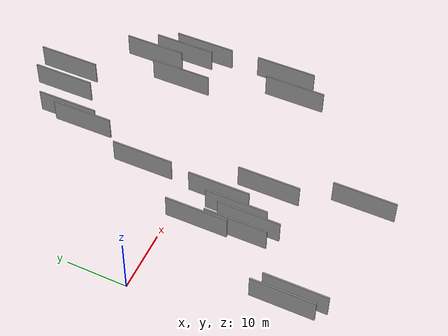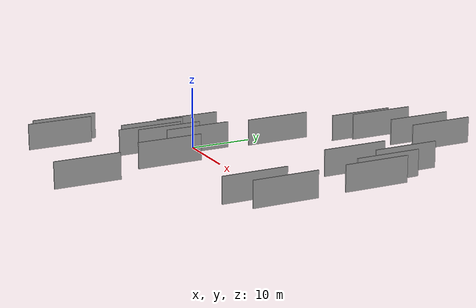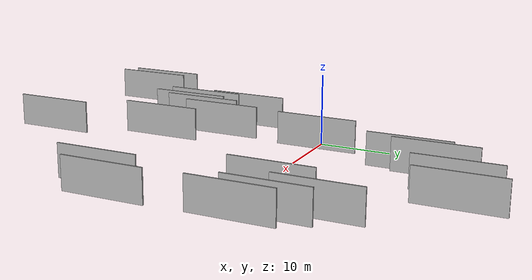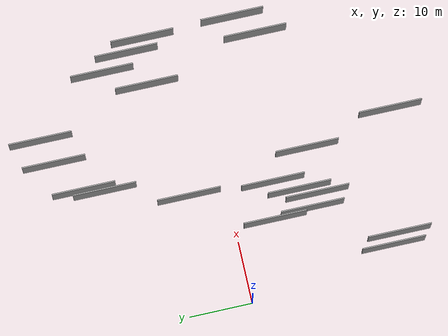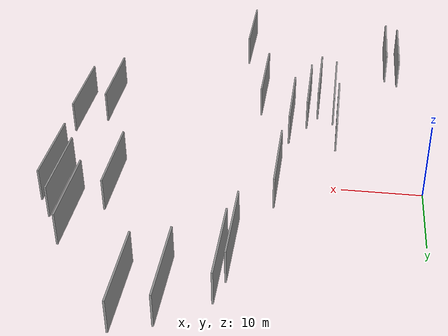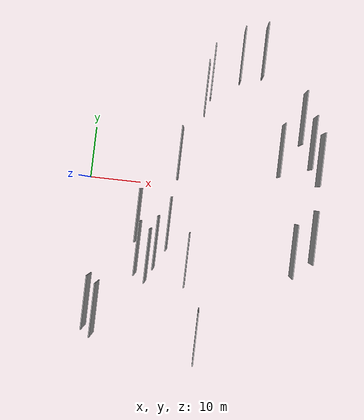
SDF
<sdf version="1.6">
 <world name="default">
  <scene>
   <sky><clouds><speed>12</speed></clouds></sky>
   <ambient>0.4 0.4 0.4 1</ambient>
   <background>0.7 0.7 0.7 1</background>
   <shadows>1</shadows>
  </scene>
  <gravity>0 0 -9.8066</gravity>
  <magnetic_field>6e-06 2.3e-05 -4.2e-05</magnetic_field>
  <physics default="0" name="default_physics" type="ode">
   <ode>
    <solver>
     <type>quick</type>
     <iters>10</iters>
     <sor>1.0</sor>
     <use_dynamic_moi_rescaling>0</use_dynamic_moi_rescaling>
    </solver>
    <constraints>
     <cfm>0</cfm>
     <erp>0.2</erp>
     <contact_max_correcting_vel>100</contact_max_correcting_vel>
     <contact_surface_layer>0.001</contact_surface_layer>
    </constraints>
   </ode>
   <max_step_size>0.004</max_step_size>
   <real_time_factor>1</real_time_factor>
   <real_time_update_rate>250</real_time_update_rate>
  </physics>
  <light name="sun" type="directional">
   <pose>0 0 10 0 0 0</pose>
   <diffuse>0.8 0.8 0.8 1</diffuse>
   <specular>0.2 0.2 0.2 1</specular>
   <attenuation>
    <range>1000</range>
    <constant>0.9</constant>
    <linear>0.01</linear>
    <quadratic>0.001</quadratic>
   </attenuation>
   <direction>-0.5 0.1 -0.9</direction>
  </light>
  <model name="grey_wall_1">
   <static>1</static>
   <pose>11.6935 -12.1341 5.0 0.000000 0.000000 1.570796</pose>
   <link name="link">
    <pose>0 0 2.00 0 0 0</pose>
    <collision name="collision"><geometry><box><size>10.00 0.2 4.00</size></box></geometry></collision>
    <visual name="visual">
     <cast_shadows>0</cast_shadows>
     <geometry><box><size>10.00 0.2 4.00</size></box></geometry>
     <material>
      <script>
       <uri>model://grey_wall/materials/scripts</uri>
       <uri>model://grey_wall/materials/textures</uri>
       <name>vrc/grey_wall</name>
      </script>
     </material>
    </visual>
   </link>
  </model>
  <model name="grey_wall_2">
   <static>1</static>
   <pose>17.6268 6.1810 5.0 0.000000 0.000000 1.570796</pose>
   <link name="link">
    <pose>0 0 2.00 0 0 0</pose>
    <collision name="collision"><geometry><box><size>10.00 0.2 4.00</size></box></geometry></collision>
    <visual name="visual">
     <cast_shadows>0</cast_shadows>
     <geometry><box><size>10.00 0.2 4.00</size></box></geometry>
     <material>
      <script>
       <uri>model://grey_wall/materials/scripts</uri>
       <uri>model://grey_wall/materials/textures</uri>
       <name>vrc/grey_wall</name>
      </script>
     </material>
    </visual>
   </link>
  </model>
  <model name="grey_wall_3">
   <static>1</static>
   <pose>31.2369 26.8618 5.0 0.000000 0.000000 1.570796</pose>
   <link name="link">
    <pose>0 0 2.00 0 0 0</pose>
    <collision name="collision"><geometry><box><size>10.00 0.2 4.00</size></box></geometry></collision>
    <visual name="visual">
     <cast_shadows>0</cast_shadows>
     <geometry><box><size>10.00 0.2 4.00</size></box></geometry>
     <material>
      <script>
       <uri>model://grey_wall/materials/scripts</uri>
       <uri>model://grey_wall/materials/textures</uri>
       <name>vrc/grey_wall</name>
      </script>
     </material>
    </visual>
   </link>
  </model>
  <model name="grey_wall_4">
   <static>1</static>
   <pose>21.2195 18.7803 5.0 0.000000 0.000000 1.570796</pose>
   <link name="link">
    <pose>0 0 2.00 0 0 0</pose>
    <collision name="collision"><geometry><box><size>10.00 0.2 4.00</size></box></geometry></collision>
    <visual name="visual">
     <cast_shadows>0</cast_shadows>
     <geometry><box><size>10.00 0.2 4.00</size></box></geometry>
     <material>
      <script>
       <uri>model://grey_wall/materials/scripts</uri>
       <uri>model://grey_wall/materials/textures</uri>
       <name>vrc/grey_wall</name>
      </script>
     </material>
    </visual>
   </link>
  </model>
  <model name="grey_wall_5">
   <static>1</static>
   <pose>11.1472 -6.0909 5.0 0.000000 0.000000 1.570796</pose>
   <link name="link">
    <pose>0 0 2.00 0 0 0</pose>
    <collision name="collision"><geometry><box><size>10.00 0.2 4.00</size></box></geometry></collision>
    <visual name="visual">
     <cast_shadows>0</cast_shadows>
     <geometry><box><size>10.00 0.2 4.00</size></box></geometry>
     <material>
      <script>
       <uri>model://grey_wall/materials/scripts</uri>
       <uri>model://grey_wall/materials/textures</uri>
       <name>vrc/grey_wall</name>
      </script>
     </material>
    </visual>
   </link>
  </model>
  <model name="grey_wall_6">
   <static>1</static>
   <pose>27.1706 25.5830 5.0 0.000000 0.000000 1.570796</pose>
   <link name="link">
    <pose>0 0 2.00 0 0 0</pose>
    <collision name="collision"><geometry><box><size>10.00 0.2 4.00</size></box></geometry></collision>
    <visual name="visual">
     <cast_shadows>0</cast_shadows>
     <geometry><box><size>10.00 0.2 4.00</size></box></geometry>
     <material>
      <script>
       <uri>model://grey_wall/materials/scripts</uri>
       <uri>model://grey_wall/materials/textures</uri>
       <name>vrc/grey_wall</name>
      </script>
     </material>
    </visual>
   </link>
  </model>
  <model name="grey_wall_7">
   <static>1</static>
   <pose>4.9014 -24.3861 5.0 0.000000 0.000000 1.570796</pose>
   <link name="link">
    <pose>0 0 2.00 0 0 0</pose>
    <collision name="collision"><geometry><box><size>10.00 0.2 4.00</size></box></geometry></collision>
    <visual name="visual">
     <cast_shadows>0</cast_shadows>
     <geometry><box><size>10.00 0.2 4.00</size></box></geometry>
     <material>
      <script>
       <uri>model://grey_wall/materials/scripts</uri>
       <uri>model://grey_wall/materials/textures</uri>
       <name>vrc/grey_wall</name>
      </script>
     </material>
    </visual>
   </link>
  </model>
  <model name="grey_wall_8">
   <static>1</static>
   <pose>42.0584 10.8622 5.0 0.000000 0.000000 1.570796</pose>
   <link name="link">
    <pose>0 0 2.00 0 0 0</pose>
    <collision name="collision"><geometry><box><size>10.00 0.2 4.00</size></box></geometry></collision>
    <visual name="visual">
     <cast_shadows>0</cast_shadows>
     <geometry><box><size>10.00 0.2 4.00</size></box></geometry>
     <material>
      <script>
       <uri>model://grey_wall/materials/scripts</uri>
       <uri>model://grey_wall/materials/textures</uri>
       <name>vrc/grey_wall</name>
      </script>
     </material>
    </visual>
   </link>
  </model>
  <model name="grey_wall_9">
   <static>1</static>
   <pose>39.7345 15.2526 5.0 0.000000 0.000000 1.570796</pose>
   <link name="link">
    <pose>0 0 2.00 0 0 0</pose>
    <collision name="collision"><geometry><box><size>10.00 0.2 4.00</size></box></geometry></collision>
    <visual name="visual">
     <cast_shadows>0</cast_shadows>
     <geometry><box><size>10.00 0.2 4.00</size></box></geometry>
     <material>
      <script>
       <uri>model://grey_wall/materials/scripts</uri>
       <uri>model://grey_wall/materials/textures</uri>
       <name>vrc/grey_wall</name>
      </script>
     </material>
    </visual>
   </link>
  </model>
  <model name="grey_wall_10">
   <static>1</static>
   <pose>44.1961 -6.5715 5.0 0.000000 0.000000 1.570796</pose>
   <link name="link">
    <pose>0 0 2.00 0 0 0</pose>
    <collision name="collision"><geometry><box><size>10.00 0.2 4.00</size></box></geometry></collision>
    <visual name="visual">
     <cast_shadows>0</cast_shadows>
     <geometry><box><size>10.00 0.2 4.00</size></box></geometry>
     <material>
      <script>
       <uri>model://grey_wall/materials/scripts</uri>
       <uri>model://grey_wall/materials/textures</uri>
       <name>vrc/grey_wall</name>
      </script>
     </material>
    </visual>
   </link>
  </model>
  <model name="grey_wall_11">
   <static>1</static>
   <pose>21.1061 -13.3948 5.0 0.000000 0.000000 1.570796</pose>
   <link name="link">
    <pose>0 0 2.00 0 0 0</pose>
    <collision name="collision"><geometry><box><size>10.00 0.2 4.00</size></box></geometry></collision>
    <visual name="visual">
     <cast_shadows>0</cast_shadows>
     <geometry><box><size>10.00 0.2 4.00</size></box></geometry>
     <material>
      <script>
       <uri>model://grey_wall/materials/scripts</uri>
       <uri>model://grey_wall/materials/textures</uri>
       <name>vrc/grey_wall</name>
      </script>
     </material>
    </visual>
   </link>
  </model>
  <model name="grey_wall_12">
   <static>1</static>
   <pose>24.3919 -27.4640 5.0 0.000000 0.000000 1.570796</pose>
   <link name="link">
    <pose>0 0 2.00 0 0 0</pose>
    <collision name="collision"><geometry><box><size>10.00 0.2 4.00</size></box></geometry></collision>
    <visual name="visual">
     <cast_shadows>0</cast_shadows>
     <geometry><box><size>10.00 0.2 4.00</size></box></geometry>
     <material>
      <script>
       <uri>model://grey_wall/materials/scripts</uri>
       <uri>model://grey_wall/materials/textures</uri>
       <name>vrc/grey_wall</name>
      </script>
     </material>
    </visual>
   </link>
  </model>
  <model name="grey_wall_13">
   <static>1</static>
   <pose>40.7871 -9.5251 5.0 0.000000 0.000000 1.570796</pose>
   <link name="link">
    <pose>0 0 2.00 0 0 0</pose>
    <collision name="collision"><geometry><box><size>10.00 0.2 4.00</size></box></geometry></collision>
    <visual name="visual">
     <cast_shadows>0</cast_shadows>
     <geometry><box><size>10.00 0.2 4.00</size></box></geometry>
     <material>
      <script>
       <uri>model://grey_wall/materials/scripts</uri>
       <uri>model://grey_wall/materials/textures</uri>
       <name>vrc/grey_wall</name>
      </script>
     </material>
    </visual>
   </link>
  </model>
  <model name="grey_wall_14">
   <static>1</static>
   <pose>43.8531 7.9176 5.0 0.000000 0.000000 1.570796</pose>
   <link name="link">
    <pose>0 0 2.00 0 0 0</pose>
    <collision name="collision"><geometry><box><size>10.00 0.2 4.00</size></box></geometry></collision>
    <visual name="visual">
     <cast_shadows>0</cast_shadows>
     <geometry><box><size>10.00 0.2 4.00</size></box></geometry>
     <material>
      <script>
       <uri>model://grey_wall/materials/scripts</uri>
       <uri>model://grey_wall/materials/textures</uri>
       <name>vrc/grey_wall</name>
      </script>
     </material>
    </visual>
   </link>
  </model>
  <model name="grey_wall_15">
   <static>1</static>
   <pose>15.0010 -10.7951 5.0 0.000000 0.000000 1.570796</pose>
   <link name="link">
    <pose>0 0 2.00 0 0 0</pose>
    <collision name="collision"><geometry><box><size>10.00 0.2 4.00</size></box></geometry></collision>
    <visual name="visual">
     <cast_shadows>0</cast_shadows>
     <geometry><box><size>10.00 0.2 4.00</size></box></geometry>
     <material>
      <script>
       <uri>model://grey_wall/materials/scripts</uri>
       <uri>model://grey_wall/materials/textures</uri>
       <name>vrc/grey_wall</name>
      </script>
     </material>
    </visual>
   </link>
  </model>
  <model name="grey_wall_16">
   <static>1</static>
   <pose>22.0419 21.9297 5.0 0.000000 0.000000 1.570796</pose>
   <link name="link">
    <pose>0 0 2.00 0 0 0</pose>
    <collision name="collision"><geometry><box><size>10.00 0.2 4.00</size></box></geometry></collision>
    <visual name="visual">
     <cast_shadows>0</cast_shadows>
     <geometry><box><size>10.00 0.2 4.00</size></box></geometry>
     <material>
      <script>
       <uri>model://grey_wall/materials/scripts</uri>
       <uri>model://grey_wall/materials/textures</uri>
       <name>vrc/grey_wall</name>
      </script>
     </material>
    </visual>
   </link>
  </model>
  <model name="grey_wall_17">
   <static>1</static>
   <pose>16.9895 -7.0257 5.0 0.000000 0.000000 1.570796</pose>
   <link name="link">
    <pose>0 0 2.00 0 0 0</pose>
    <collision name="collision"><geometry><box><size>10.00 0.2 4.00</size></box></geometry></collision>
    <visual name="visual">
     <cast_shadows>0</cast_shadows>
     <geometry><box><size>10.00 0.2 4.00</size></box></geometry>
     <material>
      <script>
       <uri>model://grey_wall/materials/scripts</uri>
       <uri>model://grey_wall/materials/textures</uri>
       <name>vrc/grey_wall</name>
      </script>
     </material>
    </visual>
   </link>
  </model>
  <model name="grey_wall_18">
   <static>1</static>
   <pose>36.3457 8.8160 5.0 0.000000 0.000000 1.570796</pose>
   <link name="link">
    <pose>0 0 2.00 0 0 0</pose>
    <collision name="collision"><geometry><box><size>10.00 0.2 4.00</size></box></geometry></collision>
    <visual name="visual">
     <cast_shadows>0</cast_shadows>
     <geometry><box><size>10.00 0.2 4.00</size></box></geometry>
     <material>
      <script>
       <uri>model://grey_wall/materials/scripts</uri>
       <uri>model://grey_wall/materials/textures</uri>
       <name>vrc/grey_wall</name>
      </script>
     </material>
    </visual>
   </link>
  </model>
  <model name="grey_wall_19">
   <static>1</static>
   <pose>3.2585 -23.0960 5.0 0.000000 0.000000 1.570796</pose>
   <link name="link">
    <pose>0 0 2.00 0 0 0</pose>
    <collision name="collision"><geometry><box><size>10.00 0.2 4.00</size></box></geometry></collision>
    <visual name="visual">
     <cast_shadows>0</cast_shadows>
     <geometry><box><size>10.00 0.2 4.00</size></box></geometry>
     <material>
      <script>
       <uri>model://grey_wall/materials/scripts</uri>
       <uri>model://grey_wall/materials/textures</uri>
       <name>vrc/grey_wall</name>
      </script>
     </material>
    </visual>
   </link>
  </model>
  <model name="grey_wall_20">
   <static>1</static>
   <pose>13.7394 -13.3497 5.0 0.000000 0.000000 1.570796</pose>
   <link name="link">
    <pose>0 0 2.00 0 0 0</pose>
    <collision name="collision"><geometry><box><size>10.00 0.2 4.00</size></box></geometry></collision>
    <visual name="visual">
     <cast_shadows>0</cast_shadows>
     <geometry><box><size>10.00 0.2 4.00</size></box></geometry>
     <material>
      <script>
       <uri>model://grey_wall/materials/scripts</uri>
       <uri>model://grey_wall/materials/textures</uri>
       <name>vrc/grey_wall</name>
      </script>
     </material>
    </visual>
   </link>
  </model>
 </world>
</sdf>
